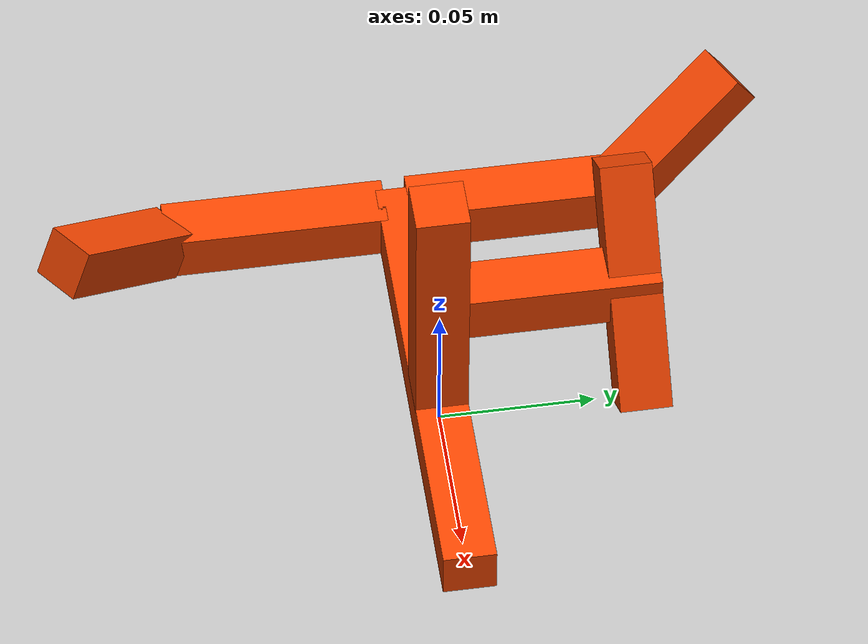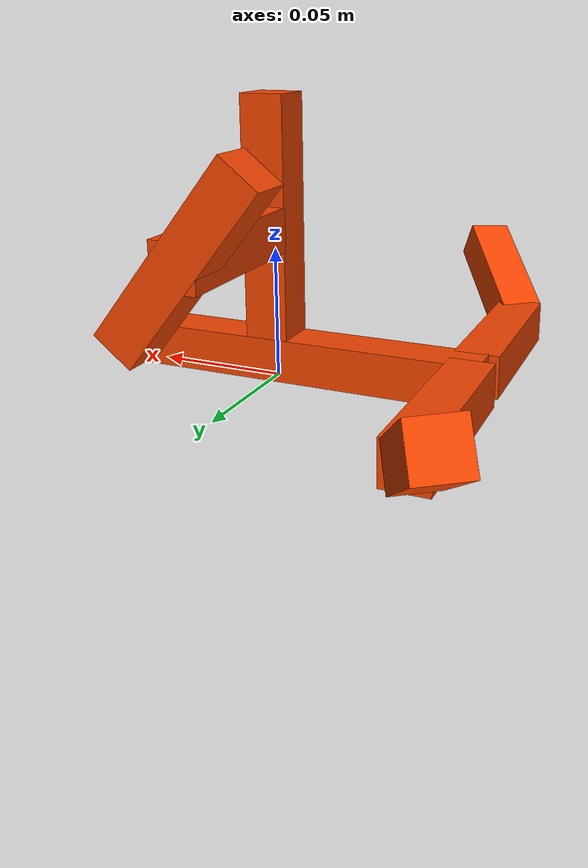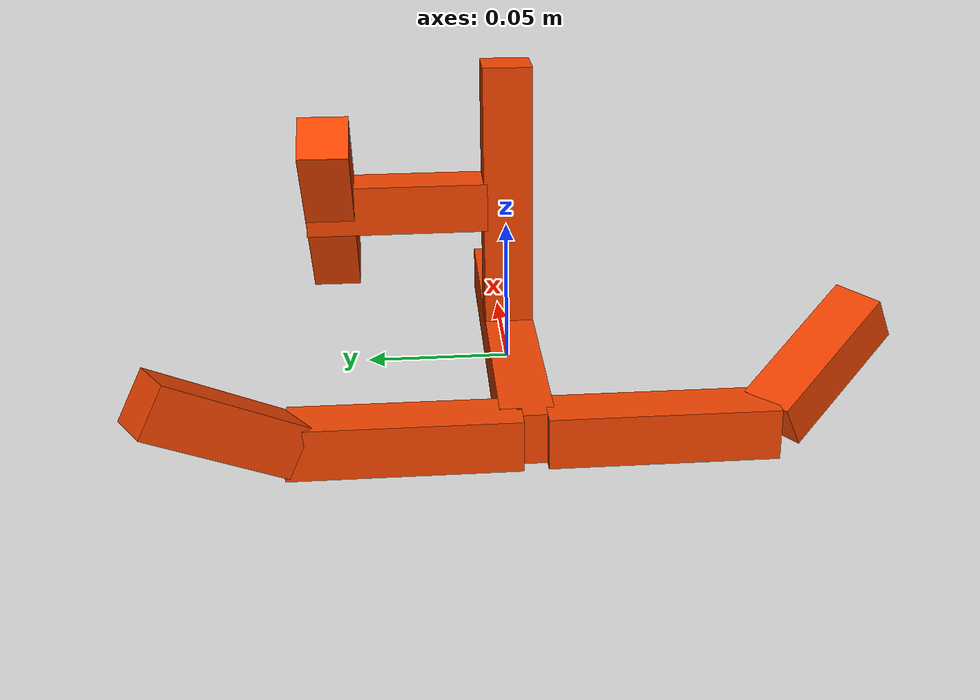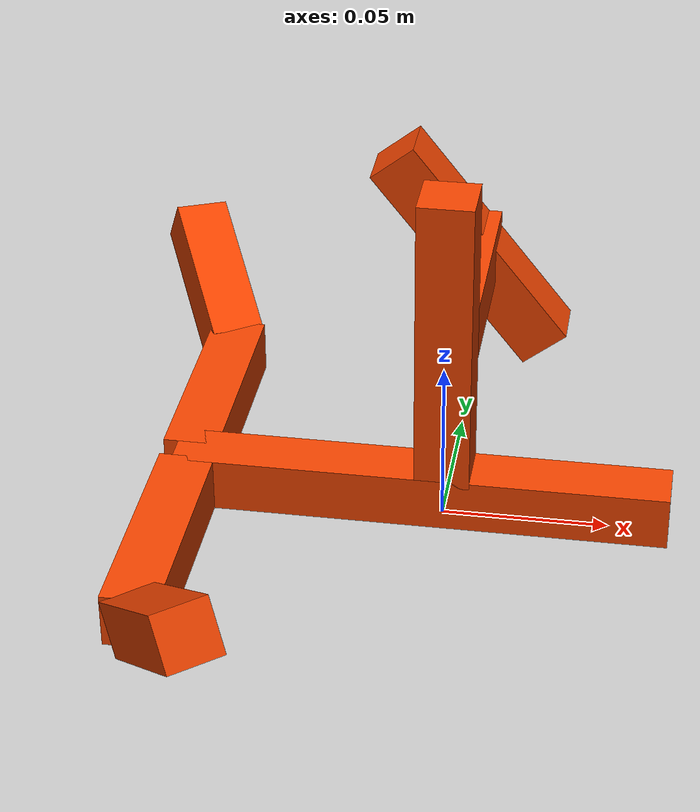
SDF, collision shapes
<sdf version="1.9">
<model name="Coral" canonical_link="root">
  <link name="root">
    <collision name="Coral_collision">
      <pose>-0.00653 -0.00037 0.00843 0.00000 0.00000 0.00000</pose>
      <geometry>
        <box>
          <size>0.14933 0.01685 0.01652</size>
        </box>
      </geometry>
      <surface>
        <contact/>
      </surface>
    </collision>
    <collision name="Coral_collision.001">
      <pose>-0.07727 0.03707 0.00843 0.00000 0.00000 1.56849</pose>
      <geometry>
        <box>
          <size>0.07173 0.01685 0.01652</size>
        </box>
      </geometry>
      <surface>
        <contact/>
      </surface>
    </collision>
    <collision name="Coral_collision.002">
      <pose>-0.08883 0.09077 0.02194 0.06664 -0.53369 2.05071</pose>
      <geometry>
        <box>
          <size>0.04961 0.01685 0.01652</size>
        </box>
      </geometry>
      <surface>
        <contact/>
      </surface>
    </collision>
    <collision name="Coral_collision.003">
      <pose>-0.07689 -0.04222 0.00843 0.00000 0.00000 -1.57311</pose>
      <geometry>
        <box>
          <size>0.07173 0.01685 0.01652</size>
        </box>
      </geometry>
      <surface>
        <contact/>
      </surface>
    </collision>
    <collision name="Coral_collision.004">
      <pose>-0.06341 -0.09515 0.02194 0.06664 -0.53369 -0.97168</pose>
      <geometry>
        <box>
          <size>0.04961 0.01685 0.01652</size>
        </box>
      </geometry>
      <surface>
        <contact/>
      </surface>
    </collision>
    <collision name="Coral_collision.005">
      <pose>0.00062 -0.00037 0.06113 -0.00000 1.57080 -0.00000</pose>
      <geometry>
        <box>
          <size>0.09261 0.01685 0.01652</size>
        </box>
      </geometry>
      <surface>
        <contact/>
      </surface>
    </collision>
    <collision name="Coral_collision.008">
      <pose>0.00062 0.03771 0.05878 -1.57080 -0.00272 -1.57080</pose>
      <geometry>
        <box>
          <size>0.06180 0.01685 0.01652</size>
        </box>
      </geometry>
      <surface>
        <contact/>
      </surface>
    </collision>
    <collision name="Coral_collision.011">
      <pose>0.00073 0.06054 0.05867 -1.57457 -0.90005 -3.13676</pose>
      <geometry>
        <box>
          <size>0.07817 0.01685 0.01652</size>
        </box>
      </geometry>
      <surface>
        <contact/>
      </surface>
    </collision>
    <inertial>
      <inertia>
        <ixx>0.00040</ixx>
        <ixy>-0.00006</ixy>
        <ixz>-0.00008</ixz>
        <iyy>0.00028</iyy>
        <iyz>-0.00005</iyz>
        <izz>0.00050</izz>
      </inertia>
      <pose>-0.03511 0.00990 0.02775 0.00000 0.00000 0.00000</pose>
      <mass>0.18700</mass>
    </inertial>
    <visual name="Coral">
      <material>
        <diffuse>0.93725 0.26275 0.00000 1.00000</diffuse>
        <specular>0.02745 0.02745 0.02745 1.00000</specular>
        <emissive>0.00000 0.00000 0.00000 1.00000</emissive>
      </material>
      <pose>0.00000 0.00000 0.00000 0.00000 0.00000 0.00000</pose>
      <geometry>
        <mesh>
          <uri>../meshes/dae/coral.dae</uri>
          <scale>1.00000 1.00000 1.00000</scale>
        </mesh>
      </geometry>
    </visual>
  </link>
</model>
</sdf>
